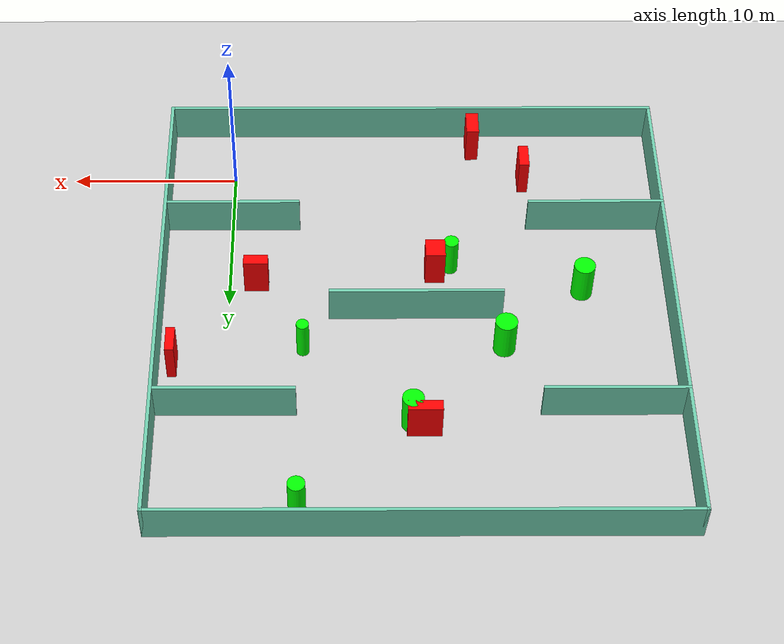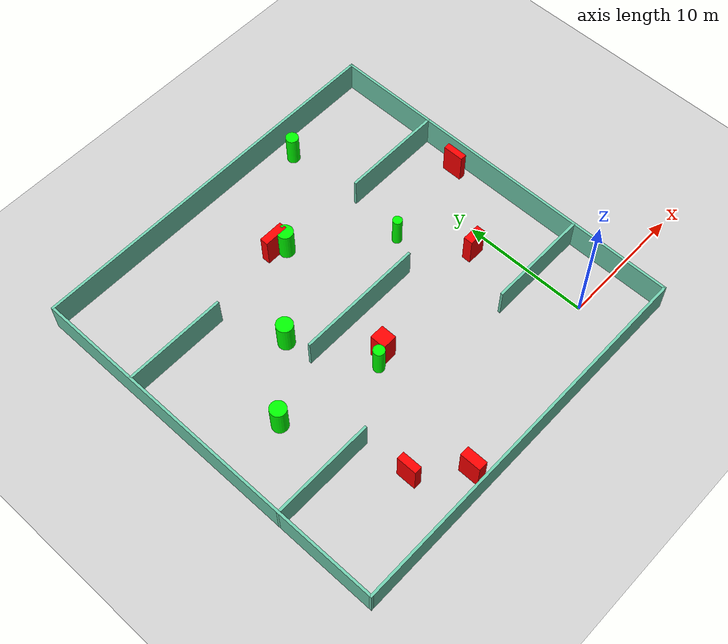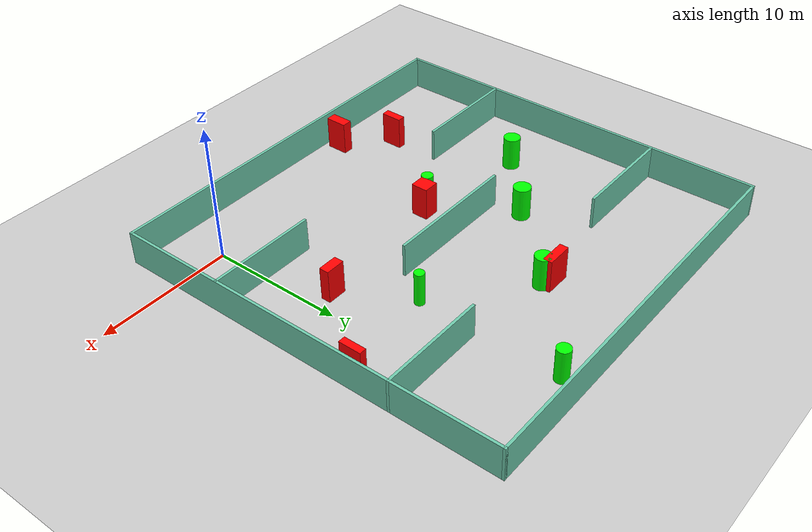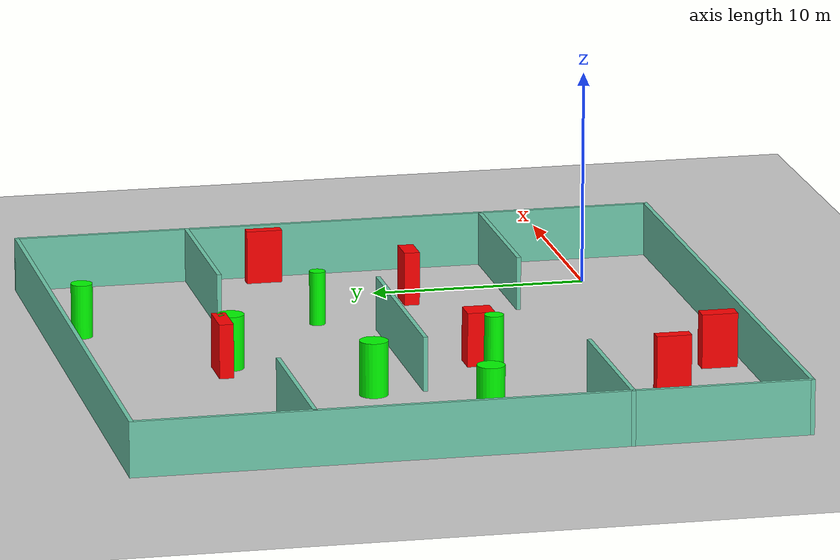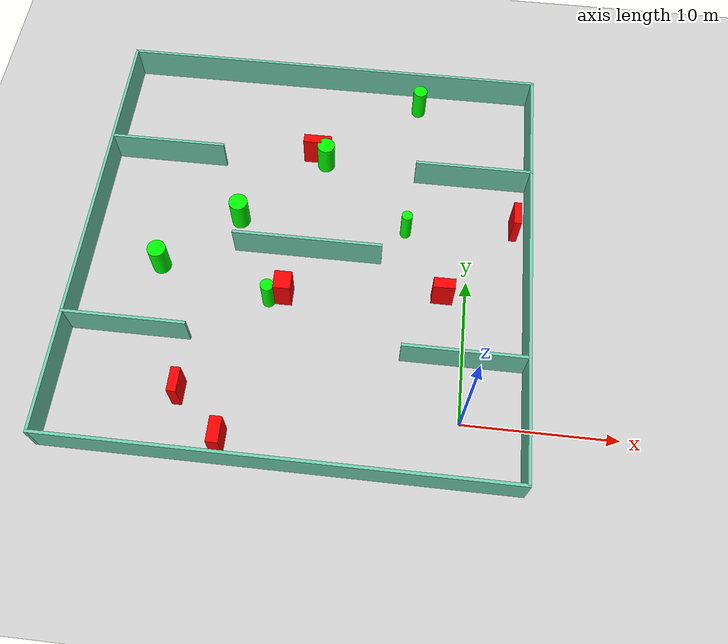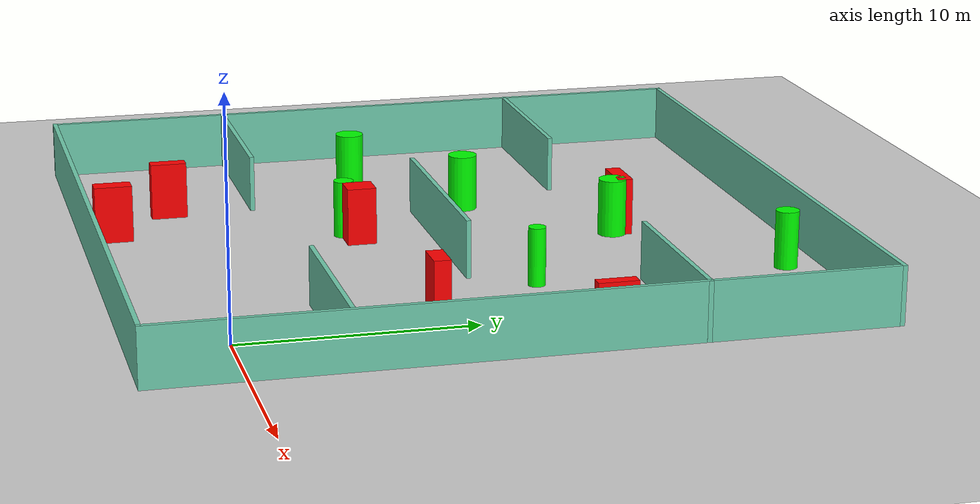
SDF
<sdf version="1.7">
 <world name="default">
  <light name="sun" type="directional">
   <pose>0 0 10 0 -0 0</pose>
   <diffuse>0.8 0.8 0.8 1</diffuse>
   <specular>0.2 0.2 0.2 1</specular>
   <attenuation>
    <range>1000</range>
    <constant>0.9</constant>
    <linear>0.01</linear>
    <quadratic>0.001</quadratic>
   </attenuation>
   <direction>-0.5 0.1 -0.9</direction>
   <spot><inner_angle>0</inner_angle><outer_angle>0</outer_angle><falloff>0</falloff></spot>
  </light>
  <model name="ground_plane">
   <static>1</static>
   <link name="link">
    <collision name="collision">
     <geometry><plane><normal>0 0 1</normal><size>100 100</size></plane></geometry>
     <surface>
      <contact><collide_bitmask>65535</collide_bitmask></contact>
      <friction><ode><mu>100</mu><mu2>50</mu2></ode></friction>
     </surface>
    </collision>
    <visual name="visual">
     <cast_shadows>0</cast_shadows>
     <geometry><plane><normal>0 0 1</normal><size>100 100</size></plane></geometry>
     <material>
      <script><uri>file://media/materials/scripts/gazebo.material</uri><name>Gazebo/Grey</name></script>
     </material>
    </visual>
   </link>
  </model>
  <gravity>0 0 -9.8</gravity>
  <magnetic_field>6e-06 2.3e-05 -4.2e-05</magnetic_field>
  <atmosphere type="adiabatic"/>
  <physics type="ode">
   <max_step_size>0.001</max_step_size>
   <real_time_factor>1</real_time_factor>
   <real_time_update_rate>1000</real_time_update_rate>
  </physics>
  <scene><ambient>0.4 0.4 0.4 1</ambient><background>0.7 0.7 0.7 1</background><shadows>1</shadows></scene>
  <spherical_coordinates>
   <surface_model>EARTH_WGS84</surface_model>
   <latitude_deg>0</latitude_deg>
   <longitude_deg>0</longitude_deg>
   <elevation>0</elevation>
   <heading_deg>0</heading_deg>
  </spherical_coordinates>
  <model name="my_base_walls">
   <link name="Wall_10">
    <collision name="Wall_10_Collision">
     <geometry><box><size>8.2 0.2 2.5</size></box></geometry>
     <pose>0 0 1.25 0 -0 0</pose>
    </collision>
    <visual name="Wall_10_Visual">
     <pose>0 0 1.25 0 -0 0</pose>
     <geometry><box><size>8.2 0.2 2.5</size></box></geometry>
     <material>
      <script><uri>file://media/materials/scripts/gazebo.material</uri><name>Gazebo/Grey</name></script>
      <ambient>0.435294 0.796078 0.67451 1</ambient>
     </material>
     <meta><layer>0</layer></meta>
    </visual>
    <pose>-11 -7 0 0 -0 0</pose>
   </link>
   <link name="Wall_12">
    <collision name="Wall_12_Collision">
     <geometry><box><size>8.2 0.2 2.5</size></box></geometry>
     <pose>0 0 1.25 0 -0 0</pose>
    </collision>
    <visual name="Wall_12_Visual">
     <pose>0 0 1.25 0 -0 0</pose>
     <geometry><box><size>8.2 0.2 2.5</size></box></geometry>
     <material>
      <script><uri>file://media/materials/scripts/gazebo.material</uri><name>Gazebo/Grey</name></script>
      <ambient>0.435294 0.796078 0.67451 1</ambient>
     </material>
     <meta><layer>0</layer></meta>
    </visual>
    <pose>-11 7 0 0 -0 0</pose>
   </link>
   <link name="Wall_14">
    <collision name="Wall_14_Collision">
     <geometry><box><size>8.2 0.2 2.5</size></box></geometry>
     <pose>0 0 1.25 0 -0 0</pose>
    </collision>
    <visual name="Wall_14_Visual">
     <pose>0 0 1.25 0 -0 0</pose>
     <geometry><box><size>8.2 0.2 2.5</size></box></geometry>
     <material>
      <script><uri>file://media/materials/scripts/gazebo.material</uri><name>Gazebo/Grey</name></script>
      <ambient>0.435294 0.796078 0.67451 1</ambient>
     </material>
     <meta><layer>0</layer></meta>
    </visual>
    <pose>11 7 0 0 -0 3.14159</pose>
   </link>
   <link name="Wall_16">
    <collision name="Wall_16_Collision">
     <geometry><box><size>10.2 0.2 2.5</size></box></geometry>
     <pose>0 0 1.25 0 -0 0</pose>
    </collision>
    <visual name="Wall_16_Visual">
     <pose>0 0 1.25 0 -0 0</pose>
     <geometry><box><size>10.2 0.2 2.5</size></box></geometry>
     <material>
      <script><uri>file://media/materials/scripts/gazebo.material</uri><name>Gazebo/Grey</name></script>
      <ambient>0.435294 0.796078 0.67451 1</ambient>
     </material>
     <meta><layer>0</layer></meta>
    </visual>
    <pose>0 0 0 0 -0 3.14159</pose>
   </link>
   <link name="Wall_2">
    <collision name="Wall_2_Collision">
     <geometry><box><size>30.2 0.2 2.5</size></box></geometry>
     <pose>0 0 1.25 0 -0 0</pose>
    </collision>
    <visual name="Wall_2_Visual">
     <pose>0 0 1.25 0 -0 0</pose>
     <geometry><box><size>30.2 0.2 2.5</size></box></geometry>
     <material>
      <script><uri>file://media/materials/scripts/gazebo.material</uri><name>Gazebo/Grey</name></script>
      <ambient>0.435294 0.796078 0.67451 1</ambient>
     </material>
     <meta><layer>0</layer></meta>
    </visual>
    <pose>0 -15 0 0 -0 3.14159</pose>
   </link>
   <link name="Wall_3">
    <collision name="Wall_3_Collision">
     <geometry><box><size>30.2 0.2 2.5</size></box></geometry>
     <pose>0 0 1.25 0 -0 0</pose>
    </collision>
    <visual name="Wall_3_Visual">
     <pose>0 0 1.25 0 -0 0</pose>
     <geometry><box><size>30.2 0.2 2.5</size></box></geometry>
     <material>
      <script><uri>file://media/materials/scripts/gazebo.material</uri><name>Gazebo/Grey</name></script>
      <ambient>0.435294 0.796078 0.67451 1</ambient>
     </material>
     <meta><layer>0</layer></meta>
    </visual>
    <pose>-15 0 0 0 -0 1.5708</pose>
   </link>
   <link name="Wall_4">
    <collision name="Wall_4_Collision">
     <geometry><box><size>30.2 0.2 2.5</size></box></geometry>
     <pose>0 0 1.25 0 -0 0</pose>
    </collision>
    <visual name="Wall_4_Visual">
     <pose>0 0 1.25 0 -0 0</pose>
     <geometry><box><size>30.2 0.2 2.5</size></box></geometry>
     <material>
      <script><uri>file://media/materials/scripts/gazebo.material</uri><name>Gazebo/Grey</name></script>
      <ambient>0.435294 0.796078 0.67451 1</ambient>
     </material>
     <meta><layer>0</layer></meta>
    </visual>
    <pose>0 15 0 0 -0 0</pose>
   </link>
   <link name="Wall_6">
    <collision name="Wall_6_Collision">
     <geometry><box><size>30.2 0.2 2.5</size></box></geometry>
     <pose>0 0 1.25 0 -0 0</pose>
    </collision>
    <visual name="Wall_6_Visual">
     <pose>0 0 1.25 0 -0 0</pose>
     <geometry><box><size>30.2 0.2 2.5</size></box></geometry>
     <material>
      <script><uri>file://media/materials/scripts/gazebo.material</uri><name>Gazebo/Grey</name></script>
      <ambient>0.435294 0.796078 0.67451 1</ambient>
     </material>
     <meta><layer>0</layer></meta>
    </visual>
    <pose>15 0 0 0 -0 1.5708</pose>
   </link>
   <link name="Wall_8">
    <collision name="Wall_8_Collision">
     <geometry><box><size>8.2 0.2 2.5</size></box></geometry>
     <pose>0 0 1.25 0 -0 0</pose>
    </collision>
    <visual name="Wall_8_Visual">
     <pose>0 0 1.25 0 -0 0</pose>
     <geometry><box><size>8.2 0.2 2.5</size></box></geometry>
     <material>
      <script><uri>file://media/materials/scripts/gazebo.material</uri><name>Gazebo/Grey</name></script>
      <ambient>0.435294 0.796078 0.67451 1</ambient>
     </material>
     <meta><layer>0</layer></meta>
    </visual>
    <pose>11 -7 0 0 -0 3.14159</pose>
   </link>
   <static>1</static>
   <pose>-11 11 0 0 -0 0</pose>
  </model>
  <model name="cylinder1">
   <static>1</static>
   <link name="link">
    <inertial>
     <mass>1</mass>
     <inertia><ixx>0.5</ixx><ixy>0</ixy><ixz>0</ixz><iyy>0.5</iyy><iyz>0</iyz><izz>1</izz></inertia>
    </inertial>
    <collision name="collision">
     <geometry><cylinder><radius>0.6266846362548564</radius><length>2.5</length></cylinder></geometry>
    </collision>
    <visual name="visual">
     <geometry><cylinder><radius>0.6266846362548564</radius><length>2.5</length></cylinder></geometry>
     <material>
      <ambient>0 1 0 1</ambient>
      <diffuse>0 1 0 1</diffuse>
      <specular>0.1 0.1 0.1 1</specular>
      <emissive>0 0 0 0</emissive>
     </material>
    </visual>
   </link>
   <pose>-20.909524439269028 9.13373074888881 1.25 0 0 0</pose>
  </model>
  <model name="cylinder2">
   <static>1</static>
   <link name="link">
    <inertial>
     <mass>1</mass>
     <inertia><ixx>0.5</ixx><ixy>0</ixy><ixz>0</ixz><iyy>0.5</iyy><iyz>0</iyz><izz>1</izz></inertia>
    </inertial>
    <collision name="collision">
     <geometry><cylinder><radius>0.4378756989284971</radius><length>2.5</length></cylinder></geometry>
    </collision>
    <visual name="visual">
     <geometry><cylinder><radius>0.4378756989284971</radius><length>2.5</length></cylinder></geometry>
     <material>
      <ambient>0 1 0 1</ambient>
      <diffuse>0 1 0 1</diffuse>
      <specular>0.1 0.1 0.1 1</specular>
      <emissive>0 0 0 0</emissive>
     </material>
    </visual>
   </link>
   <pose>-13.153711396513083 7.228838127886396 1.25 0 0 0</pose>
  </model>
  <model name="cylinder3">
   <static>1</static>
   <link name="link">
    <inertial>
     <mass>1</mass>
     <inertia><ixx>0.5</ixx><ixy>0</ixy><ixz>0</ixz><iyy>0.5</iyy><iyz>0</iyz><izz>1</izz></inertia>
    </inertial>
    <collision name="collision">
     <geometry><cylinder><radius>0.3699235823356299</radius><length>2.5</length></cylinder></geometry>
    </collision>
    <visual name="visual">
     <geometry><cylinder><radius>0.3699235823356299</radius><length>2.5</length></cylinder></geometry>
     <material>
      <ambient>0 1 0 1</ambient>
      <diffuse>0 1 0 1</diffuse>
      <specular>0.1 0.1 0.1 1</specular>
      <emissive>0 0 0 0</emissive>
     </material>
    </visual>
   </link>
   <pose>-4.408083288757489 13.503884572750572 1.25 0 0 0</pose>
  </model>
  <model name="cylinder4">
   <static>1</static>
   <link name="link">
    <inertial>
     <mass>1</mass>
     <inertia><ixx>0.5</ixx><ixy>0</ixy><ixz>0</ixz><iyy>0.5</iyy><iyz>0</iyz><izz>1</izz></inertia>
    </inertial>
    <collision name="collision">
     <geometry><cylinder><radius>0.6164719482966043</radius><length>2.5</length></cylinder></geometry>
    </collision>
    <visual name="visual">
     <geometry><cylinder><radius>0.6164719482966043</radius><length>2.5</length></cylinder></geometry>
     <material>
      <ambient>0 1 0 1</ambient>
      <diffuse>0 1 0 1</diffuse>
      <specular>0.1 0.1 0.1 1</specular>
      <emissive>0 0 0 0</emissive>
     </material>
    </visual>
   </link>
   <pose>-10.619283509493059 18.726331820559952 1.25 0 0 0</pose>
  </model>
  <model name="cylinder5">
   <static>1</static>
   <link name="link">
    <inertial>
     <mass>1</mass>
     <inertia><ixx>0.5</ixx><ixy>0</ixy><ixz>0</ixz><iyy>0.5</iyy><iyz>0</iyz><izz>1</izz></inertia>
    </inertial>
    <collision name="collision">
     <geometry><cylinder><radius>0.6464492668909867</radius><length>2.5</length></cylinder></geometry>
    </collision>
    <visual name="visual">
     <geometry><cylinder><radius>0.6464492668909867</radius><length>2.5</length></cylinder></geometry>
     <material>
      <ambient>0 1 0 1</ambient>
      <diffuse>0 1 0 1</diffuse>
      <specular>0.1 0.1 0.1 1</specular>
      <emissive>0 0 0 0</emissive>
     </material>
    </visual>
   </link>
   <pose>-16.084092095186485 13.340893130088151 1.25 0 0 0</pose>
  </model>
  <model name="cylinder6">
   <static>1</static>
   <link name="link">
    <inertial>
     <mass>1</mass>
     <inertia><ixx>0.5</ixx><ixy>0</ixy><ixz>0</ixz><iyy>0.5</iyy><iyz>0</iyz><izz>1</izz></inertia>
    </inertial>
    <collision name="collision">
     <geometry><cylinder><radius>0.49594117344302957</radius><length>2.5</length></cylinder></geometry>
    </collision>
    <visual name="visual">
     <geometry><cylinder><radius>0.49594117344302957</radius><length>2.5</length></cylinder></geometry>
     <material>
      <ambient>0 1 0 1</ambient>
      <diffuse>0 1 0 1</diffuse>
      <specular>0.1 0.1 0.1 1</specular>
      <emissive>0 0 0 0</emissive>
     </material>
    </visual>
   </link>
   <pose>-4.218685247691809 24.37121955712398 1.25 0 0 0</pose>
  </model>
  <model name="box1">
   <static>1</static>
   <link name="link">
    <inertial>
     <mass>1</mass>
     <inertia><ixx>0.083</ixx><ixy>0</ixy><ixz>0</ixz><iyy>0.083</iyy><iyz>0</iyz><izz>0.083</izz></inertia>
    </inertial>
    <collision name="collision">
     <geometry><box><size>1.4419039924974115 0.7149858693397836 2.5</size></box></geometry>
    </collision>
    <visual name="visual">
     <geometry><box><size>1.4419039924974115 0.7149858693397836 2.5</size></box></geometry>
     <material>
      <ambient>1 0 0 1</ambient>
      <diffuse>1 0 0 1</diffuse>
      <specular>0.1 0.1 0.1 1</specular>
      <emissive>0 0 0 0</emissive>
     </material>
    </visual>
    <sensor name="my_contact" type="contact">
     <contact><collision>box_collision</collision><topic>__default_topic__</topic></contact>
    </sensor>
   </link>
   <pose>-1.5879128700226737 8.625794207409486 1.25 0 0 0</pose>
  </model>
  <model name="box2">
   <static>1</static>
   <link name="link">
    <inertial>
     <mass>1</mass>
     <inertia><ixx>0.083</ixx><ixy>0</ixy><ixz>0</ixz><iyy>0.083</iyy><iyz>0</iyz><izz>0.083</izz></inertia>
    </inertial>
    <collision name="collision">
     <geometry><box><size>0.5210962883027499 1.6589311129243856 2.5</size></box></geometry>
    </collision>
    <visual name="visual">
     <geometry><box><size>0.5210962883027499 1.6589311129243856 2.5</size></box></geometry>
     <material>
      <ambient>1 0 0 1</ambient>
      <diffuse>1 0 0 1</diffuse>
      <specular>0.1 0.1 0.1 1</specular>
      <emissive>0 0 0 0</emissive>
     </material>
    </visual>
    <sensor name="my_contact" type="contact">
     <contact><collision>box_collision</collision><topic>__default_topic__</topic></contact>
    </sensor>
   </link>
   <pose>3.1101748184715916 14.533783855784957 1.25 0 0 0</pose>
  </model>
  <model name="box3">
   <static>1</static>
   <link name="link">
    <inertial>
     <mass>1</mass>
     <inertia><ixx>0.083</ixx><ixy>0</ixy><ixz>0</ixz><iyy>0.083</iyy><iyz>0</iyz><izz>0.083</izz></inertia>
    </inertial>
    <collision name="collision">
     <geometry><box><size>1.9606924616534256 0.6531427205238949 2.5</size></box></geometry>
    </collision>
    <visual name="visual">
     <geometry><box><size>1.9606924616534256 0.6531427205238949 2.5</size></box></geometry>
     <material>
      <ambient>1 0 0 1</ambient>
      <diffuse>1 0 0 1</diffuse>
      <specular>0.1 0.1 0.1 1</specular>
      <emissive>0 0 0 0</emissive>
     </material>
    </visual>
    <sensor name="my_contact" type="contact">
     <contact><collision>box_collision</collision><topic>__default_topic__</topic></contact>
    </sensor>
   </link>
   <pose>-11.291005932073563 19.229694788085574 1.25 0 0 0</pose>
  </model>
  <model name="box4">
   <static>1</static>
   <link name="link">
    <inertial>
     <mass>1</mass>
     <inertia><ixx>0.083</ixx><ixy>0</ixy><ixz>0</ixz><iyy>0.083</iyy><iyz>0</iyz><izz>0.083</izz></inertia>
    </inertial>
    <collision name="collision">
     <geometry><box><size>1.1730581775400082 1.2654735434872206 2.5</size></box></geometry>
    </collision>
    <visual name="visual">
     <geometry><box><size>1.1730581775400082 1.2654735434872206 2.5</size></box></geometry>
     <material>
      <ambient>1 0 0 1</ambient>
      <diffuse>1 0 0 1</diffuse>
      <specular>0.1 0.1 0.1 1</specular>
      <emissive>0 0 0 0</emissive>
     </material>
    </visual>
    <sensor name="my_contact" type="contact">
     <contact><collision>box_collision</collision><topic>__default_topic__</topic></contact>
    </sensor>
   </link>
   <pose>-12.19479019669098 7.72058721907932 1.25 0 0 0</pose>
  </model>
  <model name="box5">
   <static>1</static>
   <link name="link">
    <inertial>
     <mass>1</mass>
     <inertia><ixx>0.083</ixx><ixy>0</ixy><ixz>0</ixz><iyy>0.083</iyy><iyz>0</iyz><izz>0.083</izz></inertia>
    </inertial>
    <collision name="collision">
     <geometry><box><size>0.7687067348731274 1.6424948649581796 2.5</size></box></geometry>
    </collision>
    <visual name="visual">
     <geometry><box><size>0.7687067348731274 1.6424948649581796 2.5</size></box></geometry>
     <material>
      <ambient>1 0 0 1</ambient>
      <diffuse>1 0 0 1</diffuse>
      <specular>0.1 0.1 0.1 1</specular>
      <emissive>0 0 0 0</emissive>
     </material>
    </visual>
    <sensor name="my_contact" type="contact">
     <contact><collision>box_collision</collision><topic>__default_topic__</topic></contact>
    </sensor>
   </link>
   <pose>-14.84275671900911 -2.6673401188190207 1.25 0 0 0</pose>
  </model>
  <model name="box6">
   <static>1</static>
   <link name="link">
    <inertial>
     <mass>1</mass>
     <inertia><ixx>0.083</ixx><ixy>0</ixy><ixz>0</ixz><iyy>0.083</iyy><iyz>0</iyz><izz>0.083</izz></inertia>
    </inertial>
    <collision name="collision">
     <geometry><box><size>0.6092633284028828 1.586403994652345 2.5</size></box></geometry>
    </collision>
    <visual name="visual">
     <geometry><box><size>0.6092633284028828 1.586403994652345 2.5</size></box></geometry>
     <material>
      <ambient>1 0 0 1</ambient>
      <diffuse>1 0 0 1</diffuse>
      <specular>0.1 0.1 0.1 1</specular>
      <emissive>0 0 0 0</emissive>
     </material>
    </visual>
    <sensor name="my_contact" type="contact">
     <contact><collision>box_collision</collision><topic>__default_topic__</topic></contact>
    </sensor>
   </link>
   <pose>-17.890369642816026 0.18668448578603902 1.25 0 0 0</pose>
  </model>
 </world>
</sdf>
